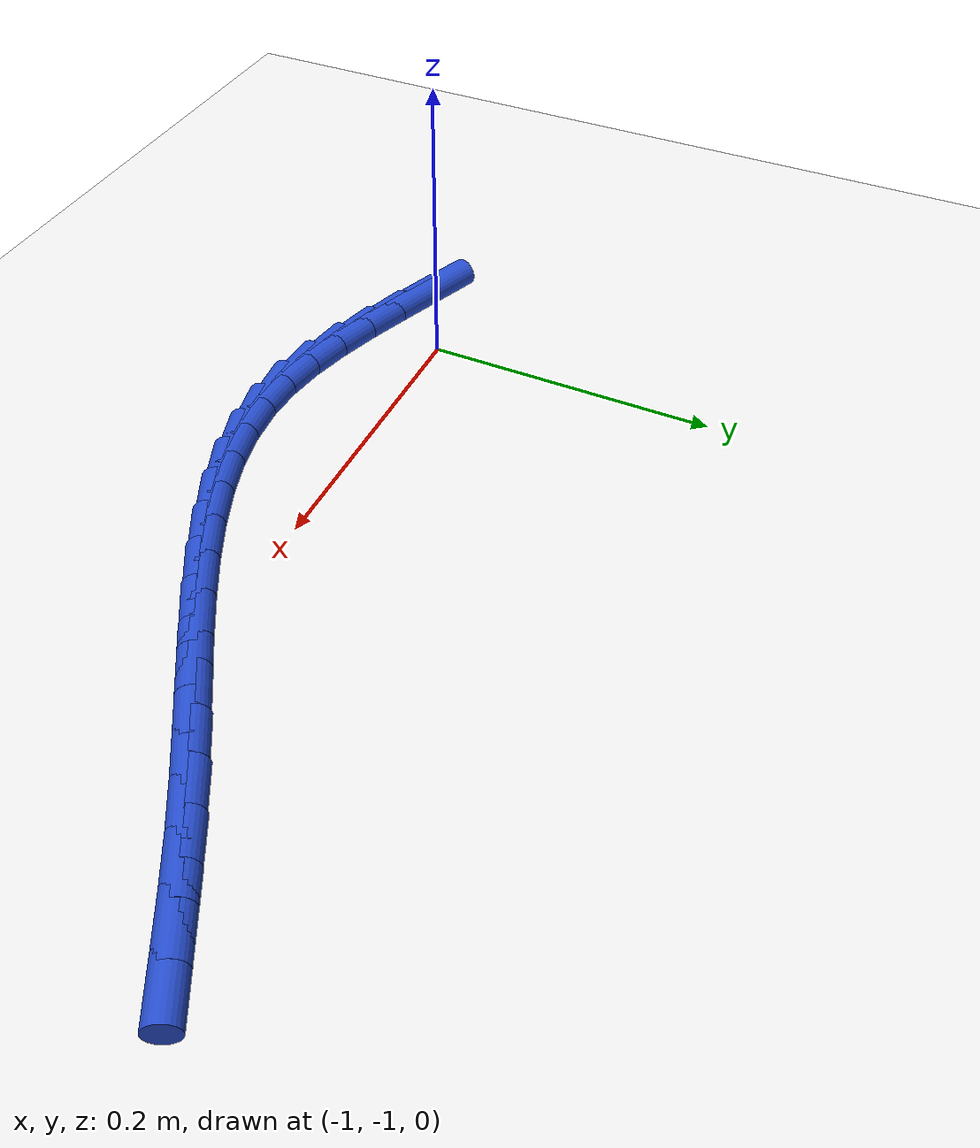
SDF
<sdf version="1.6">
 <world name="default">
  <model name="ground_plane">
   <static>1</static>
   <link name="link">
    <collision name="collision">
     <geometry><plane><normal>0 0 1</normal><size>100 100</size></plane></geometry>
     <surface><friction><ode><mu>100</mu><mu2>50</mu2></ode></friction></surface>
    </collision>
    <visual name="visual">
     <cast_shadows>0</cast_shadows>
     <geometry><plane><normal>0 0 1</normal><size>100 100</size></plane></geometry>
     <material>
      <script><uri>file://media/materials/scripts/gazebo.material</uri><name>Gazebo/WhiteGlow</name></script>
     </material>
    </visual>
   </link>
  </model>
  <model name="line">
   <link name="link_173">
    <pose>-1.0466288855673753 -1.0322700837677639 0.01 0 1.57 -0.3599506279251762</pose>
    <collision name="collision">
     <geometry><cylinder><radius>0.01</radius><length>0.08</length></cylinder></geometry>
    </collision>
    <visual name="visual">
     <material>
      <script><name>Gazebo/Blue</name><uri>file://media/materials/scripts/gazebo.material</uri></script>
     </material>
     <geometry><cylinder><radius>0.01</radius><length>0.08</length></cylinder></geometry>
    </visual>
   </link>
   <link name="link_174">
    <pose>-1.0186554692633296 -1.042797780684666 0.01 0 1.57 -0.3442767046997656</pose>
    <collision name="collision">
     <geometry><cylinder><radius>0.01</radius><length>0.08</length></cylinder></geometry>
    </collision>
    <visual name="visual">
     <material>
      <script><name>Gazebo/Blue</name><uri>file://media/materials/scripts/gazebo.material</uri></script>
     </material>
     <geometry><cylinder><radius>0.01</radius><length>0.08</length></cylinder></geometry>
    </visual>
   </link>
   <link name="link_175">
    <pose>-0.9908984867401095 -1.0527502145817063 0.01 0 1.57 -0.304776781391711</pose>
    <collision name="collision">
     <geometry><cylinder><radius>0.01</radius><length>0.08</length></cylinder></geometry>
    </collision>
    <visual name="visual">
     <material>
      <script><name>Gazebo/Blue</name><uri>file://media/materials/scripts/gazebo.material</uri></script>
     </material>
     <geometry><cylinder><radius>0.01</radius><length>0.08</length></cylinder></geometry>
    </visual>
   </link>
   <link name="link_176">
    <pose>-0.963338760786276 -1.0614198953279539 0.01 0 1.57 -0.23926562439739246</pose>
    <collision name="collision">
     <geometry><cylinder><radius>0.01</radius><length>0.08</length></cylinder></geometry>
    </collision>
    <visual name="visual">
     <material>
      <script><name>Gazebo/Blue</name><uri>file://media/materials/scripts/gazebo.material</uri></script>
     </material>
     <geometry><cylinder><radius>0.01</radius><length>0.08</length></cylinder></geometry>
    </visual>
   </link>
   <link name="link_177">
    <pose>-0.9359571141903869 -1.0680993327924784 0.01 0 1.57 -0.14523404673961898</pose>
    <collision name="collision">
     <geometry><cylinder><radius>0.01</radius><length>0.08</length></cylinder></geometry>
    </collision>
    <visual name="visual">
     <material>
      <script><name>Gazebo/Blue</name><uri>file://media/materials/scripts/gazebo.material</uri></script>
     </material>
     <geometry><cylinder><radius>0.01</radius><length>0.08</length></cylinder></geometry>
    </visual>
   </link>
   <link name="link_178">
    <pose>-0.9087343697410006 -1.0720810368443487 0.01 0 1.57 -0.022037409751352478</pose>
    <collision name="collision">
     <geometry><cylinder><radius>0.01</radius><length>0.08</length></cylinder></geometry>
    </collision>
    <visual name="visual">
     <material>
      <script><name>Gazebo/Blue</name><uri>file://media/materials/scripts/gazebo.material</uri></script>
     </material>
     <geometry><cylinder><radius>0.01</radius><length>0.08</length></cylinder></geometry>
    </visual>
   </link>
   <link name="link_179">
    <pose>-0.8816515361572234 -1.0726779689812433 0.01 0 1.57 0.10897430614285669</pose>
    <collision name="collision">
     <geometry><cylinder><radius>0.01</radius><length>0.08</length></cylinder></geometry>
    </collision>
    <visual name="visual">
     <material>
      <script><name>Gazebo/Blue</name><uri>file://media/materials/scripts/gazebo.material</uri></script>
     </material>
     <geometry><cylinder><radius>0.01</radius><length>0.08</length></cylinder></geometry>
    </visual>
   </link>
   <link name="link_180">
    <pose>-0.854694400138658 -1.0697286497534475 0.01 0 1.57 0.22343227653849357</pose>
    <collision name="collision">
     <geometry><cylinder><radius>0.01</radius><length>0.08</length></cylinder></geometry>
    </collision>
    <visual name="visual">
     <material>
      <script><name>Gazebo/Blue</name><uri>file://media/materials/scripts/gazebo.material</uri></script>
     </material>
     <geometry><cylinder><radius>0.01</radius><length>0.08</length></cylinder></geometry>
    </visual>
   </link>
   <link name="link_181">
    <pose>-0.8278538228389313 -1.0636297696856096 0.01 0 1.57 0.31884565948038485</pose>
    <collision name="collision">
     <geometry><cylinder><radius>0.01</radius><length>0.08</length></cylinder></geometry>
    </collision>
    <visual name="visual">
     <material>
      <script><name>Gazebo/Blue</name><uri>file://media/materials/scripts/gazebo.material</uri></script>
     </material>
     <geometry><cylinder><radius>0.01</radius><length>0.08</length></cylinder></geometry>
    </visual>
   </link>
   <link name="link_182">
    <pose>-0.8011209107042978 -1.054805000526113 0.01 0 1.57 0.3957321999842793</pose>
    <collision name="collision">
     <geometry><cylinder><radius>0.01</radius><length>0.08</length></cylinder></geometry>
    </collision>
    <visual name="visual">
     <material>
      <script><name>Gazebo/Blue</name><uri>file://media/materials/scripts/gazebo.material</uri></script>
     </material>
     <geometry><cylinder><radius>0.01</radius><length>0.08</length></cylinder></geometry>
    </visual>
   </link>
   <link name="link_183">
    <pose>-0.7744867701810123 -1.0436780140233384 0.01 0 1.57 0.4555805190417689</pose>
    <collision name="collision">
     <geometry><cylinder><radius>0.01</radius><length>0.08</length></cylinder></geometry>
    </collision>
    <visual name="visual">
     <material>
      <script><name>Gazebo/Blue</name><uri>file://media/materials/scripts/gazebo.material</uri></script>
     </material>
     <geometry><cylinder><radius>0.01</radius><length>0.08</length></cylinder></geometry>
    </visual>
   </link>
   <link name="link_184">
    <pose>-0.7479425077153283 -1.0306724819256678 0.01 0 1.57 0.5001004365396196</pose>
    <collision name="collision">
     <geometry><cylinder><radius>0.01</radius><length>0.08</length></cylinder></geometry>
    </collision>
    <visual name="visual">
     <material>
      <script><name>Gazebo/Blue</name><uri>file://media/materials/scripts/gazebo.material</uri></script>
     </material>
     <geometry><cylinder><radius>0.01</radius><length>0.08</length></cylinder></geometry>
    </visual>
   </link>
   <link name="link_185">
    <pose>-0.7214792297535024 -1.0162120759814834 0.01 0 1.57 0.530805306090679</pose>
    <collision name="collision">
     <geometry><cylinder><radius>0.01</radius><length>0.08</length></cylinder></geometry>
    </collision>
    <visual name="visual">
     <material>
      <script><name>Gazebo/Blue</name><uri>file://media/materials/scripts/gazebo.material</uri></script>
     </material>
     <geometry><cylinder><radius>0.01</radius><length>0.08</length></cylinder></geometry>
    </visual>
   </link>
   <link name="link_186">
    <pose>-0.6950880427417881 -1.000720467939167 0.01 0 1.57 0.5488206878895114</pose>
    <collision name="collision">
     <geometry><cylinder><radius>0.01</radius><length>0.08</length></cylinder></geometry>
    </collision>
    <visual name="visual">
     <material>
      <script><name>Gazebo/Blue</name><uri>file://media/materials/scripts/gazebo.material</uri></script>
     </material>
     <geometry><cylinder><radius>0.01</radius><length>0.08</length></cylinder></geometry>
    </visual>
   </link>
   <link name="link_187">
    <pose>-0.6687600531264402 -0.9846213295470997 0.01 0 1.57 0.5548118300877781</pose>
    <collision name="collision">
     <geometry><cylinder><radius>0.01</radius><length>0.08</length></cylinder></geometry>
    </collision>
    <visual name="visual">
     <material>
      <script><name>Gazebo/Blue</name><uri>file://media/materials/scripts/gazebo.material</uri></script>
     </material>
     <geometry><cylinder><radius>0.01</radius><length>0.08</length></cylinder></geometry>
    </visual>
   </link>
   <link name="link_188">
    <pose>-0.6424863673537125 -0.968338332553663 0.01 0 1.57 0.5489599566826378</pose>
    <collision name="collision">
     <geometry><cylinder><radius>0.01</radius><length>0.08</length></cylinder></geometry>
    </collision>
    <visual name="visual">
     <material>
      <script><name>Gazebo/Blue</name><uri>file://media/materials/scripts/gazebo.material</uri></script>
     </material>
     <geometry><cylinder><radius>0.01</radius><length>0.08</length></cylinder></geometry>
    </visual>
   </link>
   <link name="link_189">
    <pose>-0.6162580918698609 -0.95229514870724 0.01 0 1.57 0.5309535088660009</pose>
    <collision name="collision">
     <geometry><cylinder><radius>0.01</radius><length>0.08</length></cylinder></geometry>
    </collision>
    <visual name="visual">
     <material>
      <script><name>Gazebo/Blue</name><uri>file://media/materials/scripts/gazebo.material</uri></script>
     </material>
     <geometry><cylinder><radius>0.01</radius><length>0.08</length></cylinder></geometry>
    </visual>
   </link>
   <link name="link_190">
    <pose>-0.5900663419453722 -0.9369153904425886 0.01 0 1.57 0.5052036399133937</pose>
    <collision name="collision">
     <geometry><cylinder><radius>0.01</radius><length>0.08</length></cylinder></geometry>
    </collision>
    <visual name="visual">
     <material>
      <script><name>Gazebo/Blue</name><uri>file://media/materials/scripts/gazebo.material</uri></script>
     </material>
     <geometry><cylinder><radius>0.01</radius><length>0.08</length></cylinder></geometry>
    </visual>
   </link>
   <link name="link_191">
    <pose>-0.5639267127108968 -0.9224581245334348 0.01 0 1.57 0.4880389511847045</pose>
    <collision name="collision">
     <geometry><cylinder><radius>0.01</radius><length>0.08</length></cylinder></geometry>
    </collision>
    <visual name="visual">
     <material>
      <script><name>Gazebo/Blue</name><uri>file://media/materials/scripts/gazebo.material</uri></script>
     </material>
     <geometry><cylinder><radius>0.01</radius><length>0.08</length></cylinder></geometry>
    </visual>
   </link>
   <link name="link_192">
    <pose>-0.5379327218415396 -0.9086586477441579 0.01 0 1.57 0.48336196406240794</pose>
    <collision name="collision">
     <geometry><cylinder><radius>0.01</radius><length>0.08</length></cylinder></geometry>
    </collision>
    <visual name="visual">
     <material>
      <script><name>Gazebo/Blue</name><uri>file://media/materials/scripts/gazebo.material</uri></script>
     </material>
     <geometry><cylinder><radius>0.01</radius><length>0.08</length></cylinder></geometry>
    </visual>
   </link>
  </model>
 </world>
</sdf>
